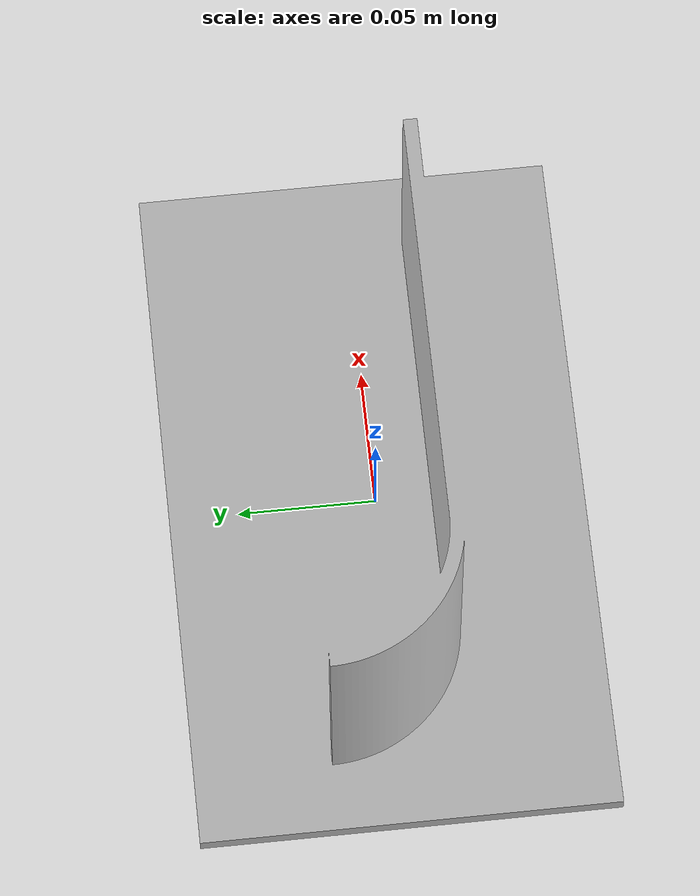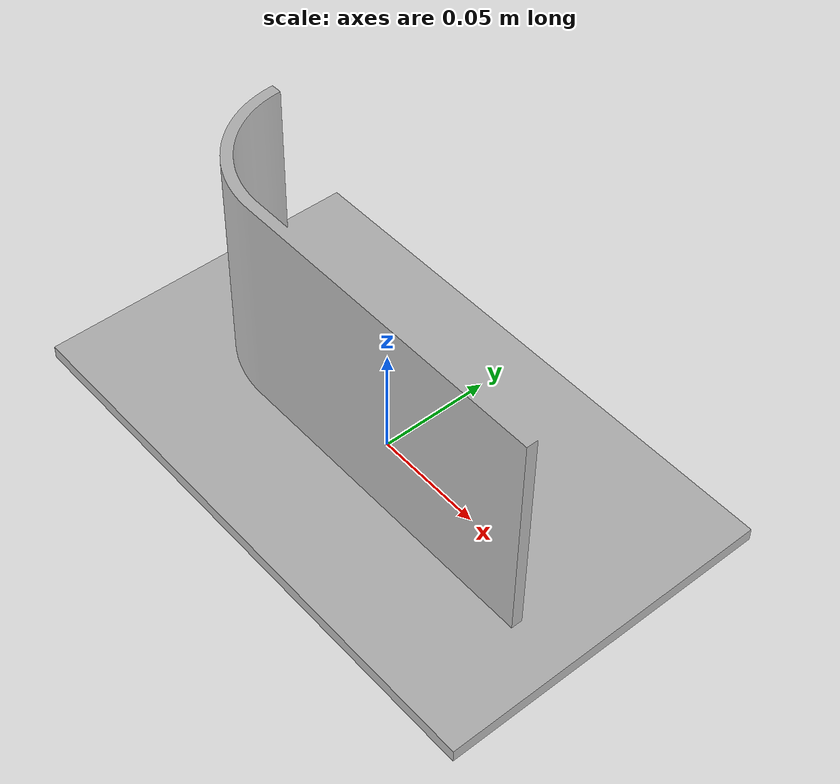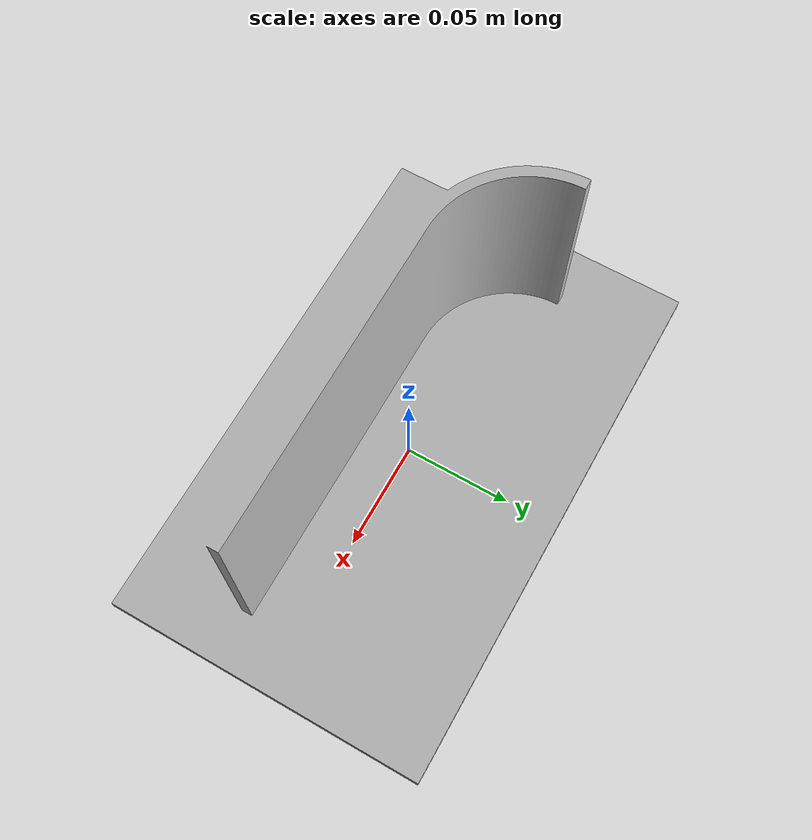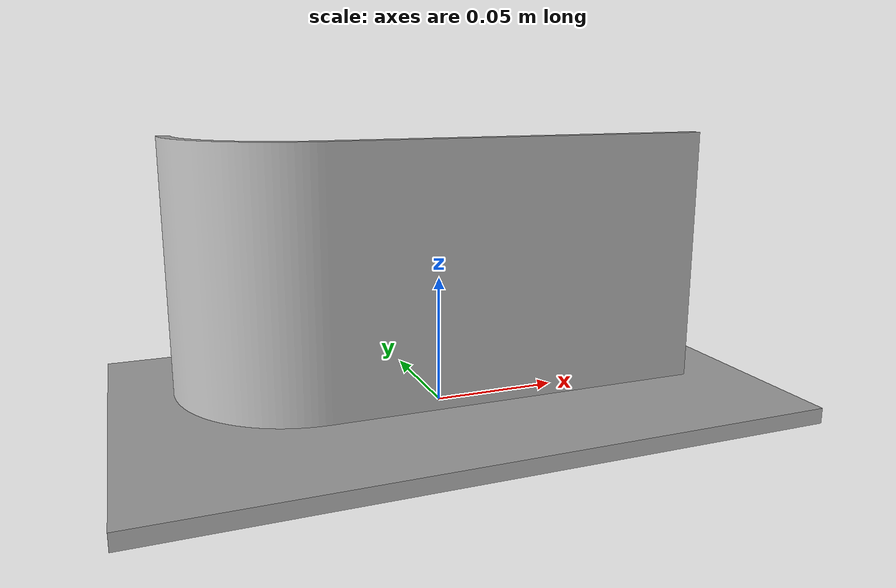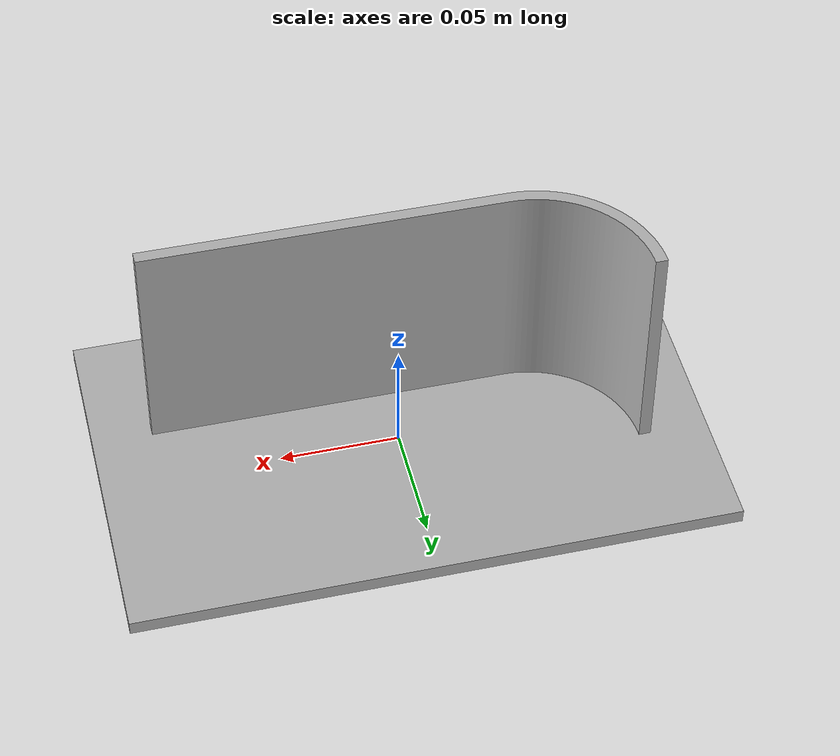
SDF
<?xml version="1.0" ?>
<sdf version="1.6">
  <model name="cylinder_plane">
    <static>true</static>
    <link name="link">
      <collision name="collision">
        <geometry>
          <mesh>
            <scale>0.001 0.001 0.001</scale>
            <uri>model://cylinder_plane/meshes/cylinder_plane.stl</uri>
          </mesh>
        </geometry>
      </collision>
      <visual name="visual">
        <geometry>
          <mesh>
            <scale>0.001 0.001 0.001</scale>
            <uri>model://cylinder_plane/meshes/cylinder_plane.stl</uri>
          </mesh>
        </geometry>
      </visual>
    </link>
  </model>
</sdf>
